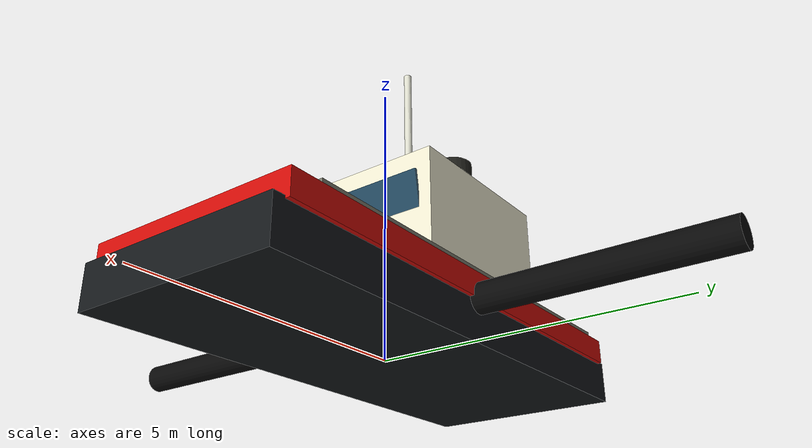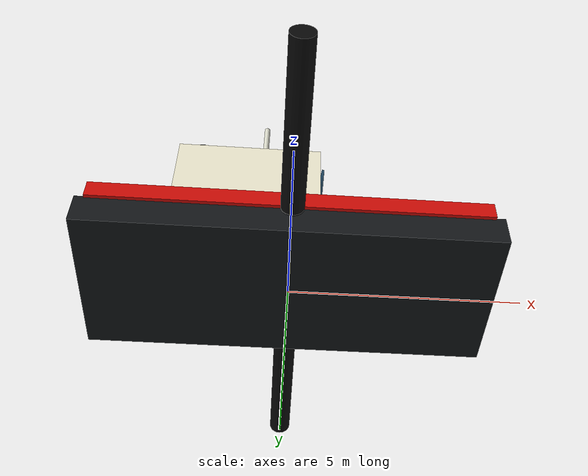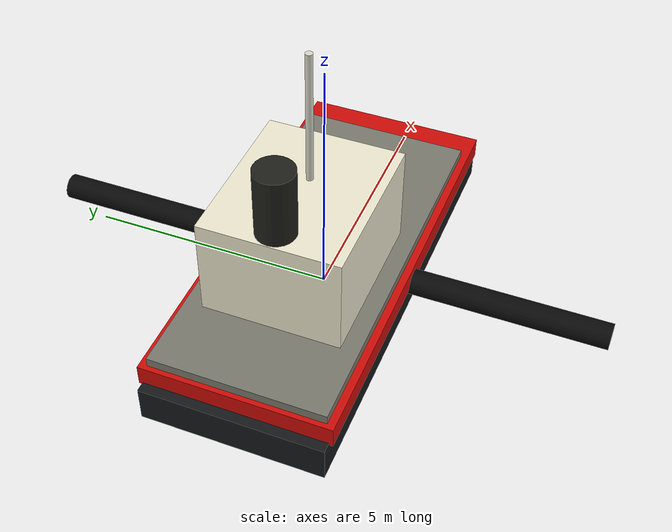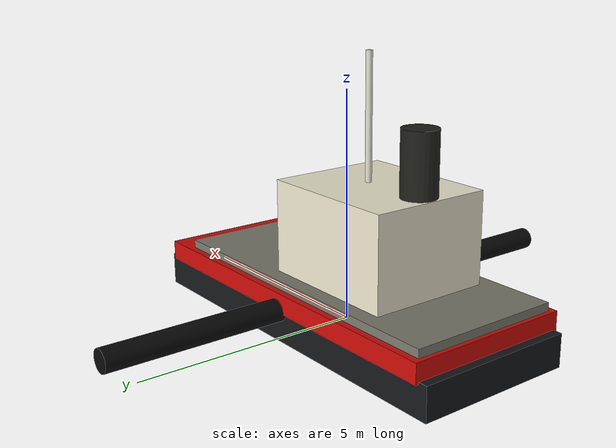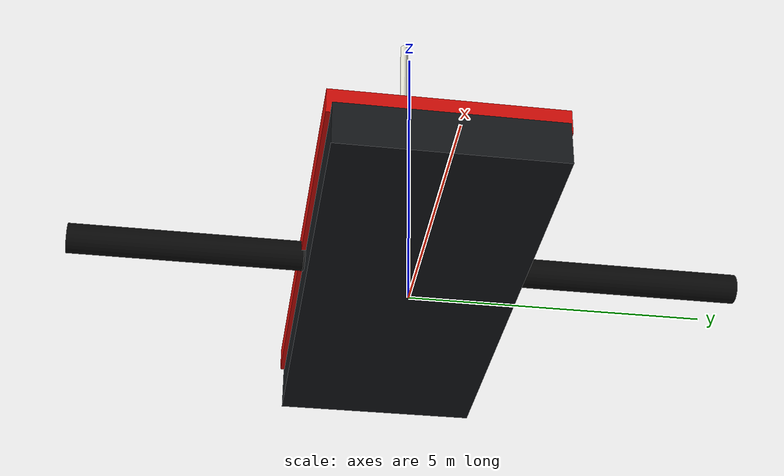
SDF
<?xml version="1.0"?>
<sdf version="1.10"><model name="harbor_tug"><pose>0 0 0.55 0 0 0</pose><link name="hull">
  <enable_wind>true</enable_wind><inertial><mass>620</mass><inertia><ixx>520</ixx><iyy>2400</iyy><izz>2700</izz></inertia></inertial>
  <collision name="hull_collision"><geometry><box><size>9 3.8 1.15</size></box></geometry></collision>
  <visual name="lower_hull"><pose>0 0 -0.25 0 0 0</pose><geometry><box><size>8.8 3.55 0.72</size></box></geometry><material><ambient>0.04 0.04 0.045 1</ambient><diffuse>0.08 0.09 0.1 1</diffuse><specular>0.2 0.2 0.2 1</specular></material></visual>
  <visual name="red_freeboard"><pose>0 0 0.28 0 0 0</pose><geometry><box><size>8.4 3.7 0.42</size></box></geometry><material><ambient>0.55 0.025 0.015 1</ambient><diffuse>0.82 0.045 0.025 1</diffuse></material></visual>
  <visual name="deck"><pose>-0.3 0 0.58 0 0 0</pose><geometry><box><size>7.6 3.4 0.18</size></box></geometry><material><ambient>0.3 0.3 0.27 1</ambient><diffuse>0.48 0.48 0.43 1</diffuse></material></visual>
  <visual name="wheelhouse"><pose>-1 0 1.65 0 0 0</pose><geometry><box><size>3.2 2.7 2</size></box></geometry><material><ambient>0.78 0.76 0.68 1</ambient><diffuse>0.94 0.92 0.82 1</diffuse></material></visual>
  <visual name="front_windows"><pose>0.62 0 1.92 0 0.15 0</pose><geometry><box><size>0.05 2.25 0.72</size></box></geometry><material><ambient>0.015 0.07 0.11 0.85</ambient><diffuse>0.025 0.2 0.32 0.85</diffuse><specular>0.8 0.9 1 1</specular></material></visual>
  <visual name="funnel"><pose>-2.2 0 3.1 0 0 0</pose><geometry><cylinder><radius>0.38</radius><length>1.8</length></cylinder></geometry><material><ambient>0.06 0.06 0.055 1</ambient><diffuse>0.12 0.12 0.1 1</diffuse></material></visual>
  <visual name="mast"><pose>-0.7 0 3.8 0 0 0</pose><geometry><cylinder><radius>0.07</radius><length>3</length></cylinder></geometry><material><ambient>0.65 0.65 0.6 1</ambient><diffuse>0.86 0.86 0.8 1</diffuse></material></visual>
  <visual name="port_fender"><pose>0 1.95 0.1 1.5708 0 0</pose><geometry><cylinder><radius>0.25</radius><length>7.5</length></cylinder></geometry><material><ambient>0.015 0.015 0.015 1</ambient><diffuse>0.035 0.035 0.035 1</diffuse></material></visual>
  <visual name="starboard_fender"><pose>0 -1.95 0.1 1.5708 0 0</pose><geometry><cylinder><radius>0.25</radius><length>7.5</length></cylinder></geometry><material><ambient>0.015 0.015 0.015 1</ambient><diffuse>0.035 0.035 0.035 1</diffuse></material></visual>
  <light name="port_light" type="point"><pose>0 1.6 3.5 0 0 0</pose><cast_shadows>false</cast_shadows><intensity>0.8</intensity><diffuse>1 0.04 0.02 1</diffuse><attenuation><range>20</range><constant>0.8</constant><linear>0.05</linear><quadratic>0.003</quadratic></attenuation></light>
  <light name="starboard_light" type="point"><pose>0 -1.6 3.5 0 0 0</pose><cast_shadows>false</cast_shadows><intensity>0.8</intensity><diffuse>0.03 1 0.16 1</diffuse><attenuation><range>20</range><constant>0.8</constant><linear>0.05</linear><quadratic>0.003</quadratic></attenuation></light>
  <particle_emitter name="foam_wake" type="box"><pose>-4.8 0 -0.15 0 -1.5708 0</pose><emitting>true</emitting><size>0.2 2.4 0.3</size><particle_size>0.35 0.35 0.08</particle_size><lifetime>4.5</lifetime><min_velocity>0.7</min_velocity><max_velocity>1.3</max_velocity><scale_rate>0.65</scale_rate><rate>36</rate><color_start>0.88 0.96 1 0.75</color_start><color_end>0.75 0.9 0.96 0</color_end><particle_scatter_ratio>0.15</particle_scatter_ratio></particle_emitter>
  </link>
  <plugin filename="gz-sim-velocity-control-system" name="gz::sim::systems::VelocityControl"><initial_linear>1.15 0 0</initial_linear><initial_angular>0 0 0.012</initial_angular><topic>/model/harbor_tug/cmd_vel</topic></plugin>
  <plugin filename="libBoatWaveFollower.so" name="gz::sim::systems::BoatWaveFollower"><mean_z>0.58</mean_z><heave_amplitude>0.07</heave_amplitude><roll_amplitude>0.035</roll_amplitude><pitch_amplitude>0.03</pitch_amplitude><primary_frequency>0.95</primary_frequency><secondary_frequency>1.5</secondary_frequency></plugin>
  </model></sdf>
